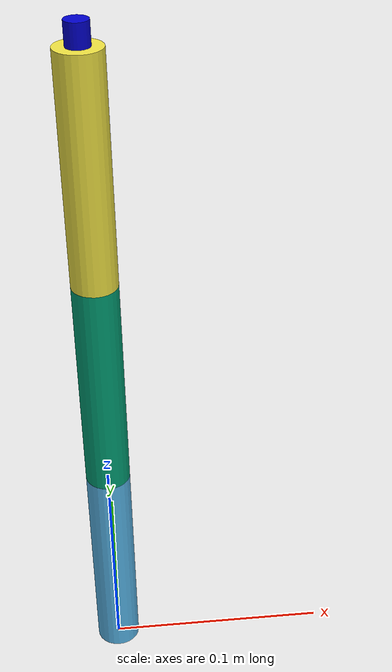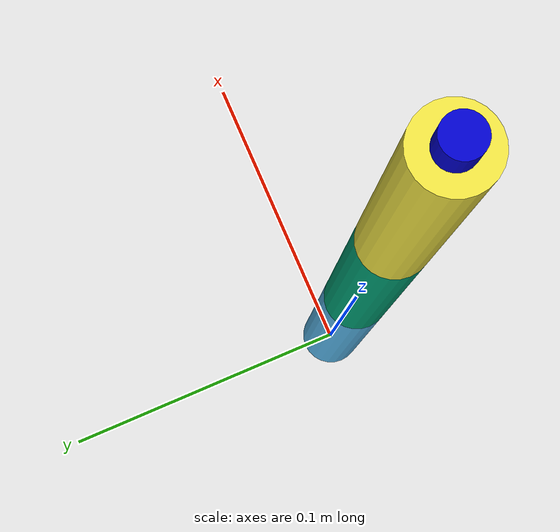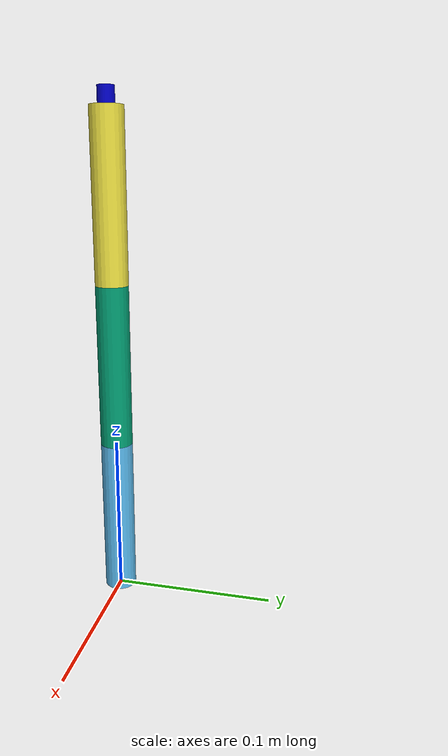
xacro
<?xml version="1.0"?>
<robot xmlns:xacro="http://www.ros.org/wiki/xacro" name="model">
    <xacro:arg name="initial_positions_file" default="initial_positions.yaml" />

    <!-- Import model urdf file -->
    <xacro:include filename="/home/bjoern/Projects/Masterarbeit/ros2_ws/src/nullspace_solver_moveit_config/urdf/model.urdf" />

    <!-- Import control_xacro -->
    <xacro:include filename="model.ros2_control.xacro" />

    <xacro:model_ros2_control name="FakeSystem" initial_positions_file="$(arg initial_positions_file)"/>

</robot>

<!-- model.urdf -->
<!-- |    This document was autogenerated by xacro from src/nullspace_solver_moveit_config/urdf/model.urdf.xacro | -->
<!-- |    EDITING THIS FILE BY HAND IS NOT RECOMMENDED                                 | -->
<robot name="robotmodel">
  <material name="blue">
    <color rgba="0 0 0.8 1"/>
  </material>
  <link name="base">
    </link>
  <link name="link1">
    <visual>
      <geometry>
        <cylinder length="0.1" radius="0.01"/>
      </geometry>
      <origin rpy="0.0 0.0 0.0" xyz="0.0 0.0 0.05"/>
    </visual>
    <collision>
      <origin rpy="0.0 0.0 0.0" xyz="0.0 0.0 0.05"/>
      <geometry>
        <cylinder length="0.1" radius="0.01"/>
      </geometry>
    </collision>
    <inertial>
      <origin rpy="0.0 0.0 0.0" xyz="0.0 -0.05 -0.0"/>
      <mass value="1"/>
      <inertia ixx="0.0008583333333333335" ixy="0.0" ixz="0.0" iyy="0.0008583333333333335" iyz="0.0" izz="5e-05"/>
    </inertial>
  </link>
  <joint name="world_joint" type="fixed">
    <parent link="base"/>
    <child link="link1"/>
    <origin xyz="0.0 0.0 0.0"/>
  </joint>
  <link name="link2">
    <visual>
      <geometry>
        <cylinder length="0.1" radius="0.01"/>
      </geometry>
      <origin rpy="0.0 0.0 0.0" xyz="0.0 0.0 0.05"/>
    </visual>
    <collision>
      <origin rpy="0.0 0.0 0.0" xyz="0.0 0.0 0.05"/>
      <geometry>
        <cylinder length="0.1" radius="0.01"/>
      </geometry>
    </collision>
    <inertial>
      <origin rpy="0.0 0.0 0.0" xyz="0.0 -0.05 -0.0"/>
      <mass value="1"/>
      <inertia ixx="0.0008583333333333335" ixy="0.0" ixz="0.0" iyy="0.0008583333333333335" iyz="0.0" izz="5e-05"/>
    </inertial>
  </link>
  <joint name="joint1" type="revolute">
    <parent link="link1"/>
    <child link="link2"/>
    <origin xyz="0.0 0.0 0.1"/>
    <axis xyz="0 1 0"/>
    <limit effort="1000.0" lower="-1.5707963267948966" upper="1.5707963267948966" velocity="0.5"/>
  </joint>
  <link name="link3">
    <visual>
      <geometry>
        <cylinder length="0.1" radius="0.01"/>
      </geometry>
      <origin rpy="0.0 0.0 0.0" xyz="0.0 0.0 0.05"/>
    </visual>
    <collision>
      <origin rpy="0.0 0.0 0.0" xyz="0.0 0.0 0.05"/>
      <geometry>
        <cylinder length="0.1" radius="0.01"/>
      </geometry>
    </collision>
    <inertial>
      <origin rpy="0.0 0.0 0.0" xyz="0.0 -0.05 -0.0"/>
      <mass value="1"/>
      <inertia ixx="0.0008583333333333335" ixy="0.0" ixz="0.0" iyy="0.0008583333333333335" iyz="0.0" izz="5e-05"/>
    </inertial>
  </link>
  <joint name="joint2" type="revolute">
    <parent link="link2"/>
    <child link="link3"/>
    <origin xyz="0.0 0.0 0.1"/>
    <axis xyz="0 1 0"/>
    <limit effort="1000.0" lower="-1.5707963267948966" upper="1.5707963267948966" velocity="0.5"/>
  </joint>
  <link name="ee">
    <visual>
      <geometry>
        <cylinder length="0.01" radius="0.005"/>
      </geometry>
      <origin rpy="0.0 0.0 0.0" xyz="0.0 0.0 0.005"/>
      <material name="blue"/>
    </visual>
    <collision>
      <origin rpy="0.0 0.0 0.0" xyz="0.0 0.0 0.005"/>
      <geometry>
        <cylinder length="0.01" radius="0.005"/>
      </geometry>
    </collision>
    <inertial>
      <origin rpy="0.0 0.0 0.0" xyz="0.0 -0.005 -0.0"/>
      <mass value="1"/>
      <inertia ixx="1.4583333333333333e-05" ixy="0.0" ixz="0.0" iyy="1.4583333333333333e-05" iyz="0.0" izz="1.25e-05"/>
    </inertial>
  </link>
  <joint name="joint3" type="fixed">
    <parent link="link3"/>
    <child link="ee"/>
    <origin xyz="0.0 0.0 0.1"/>
  </joint>
</robot>
